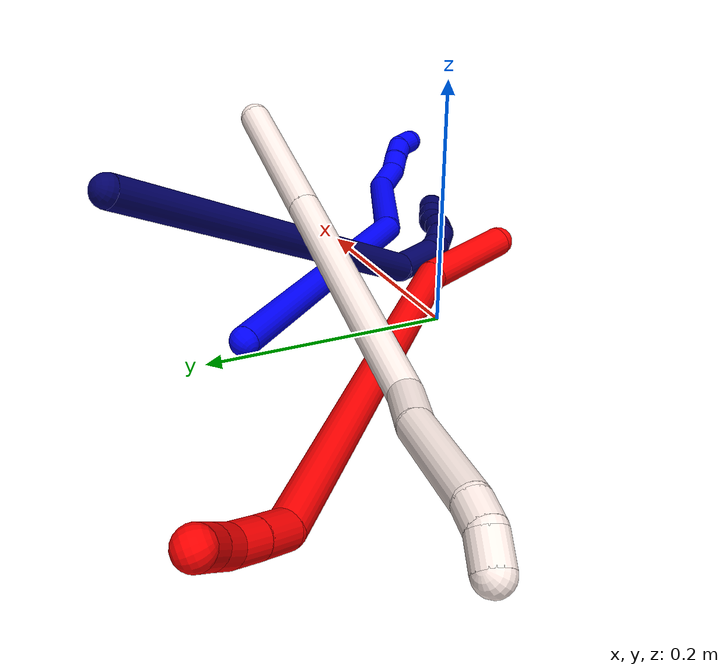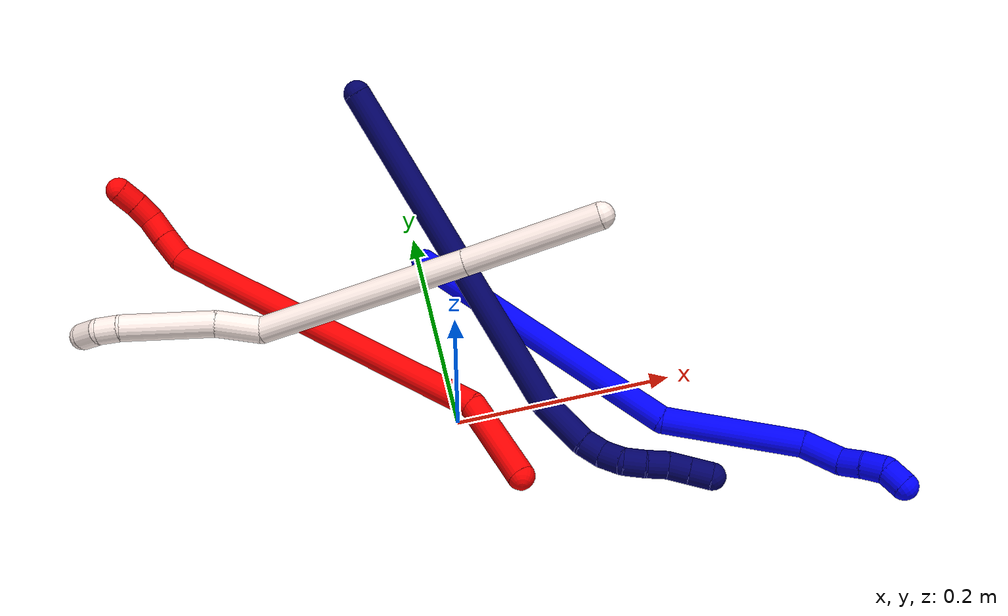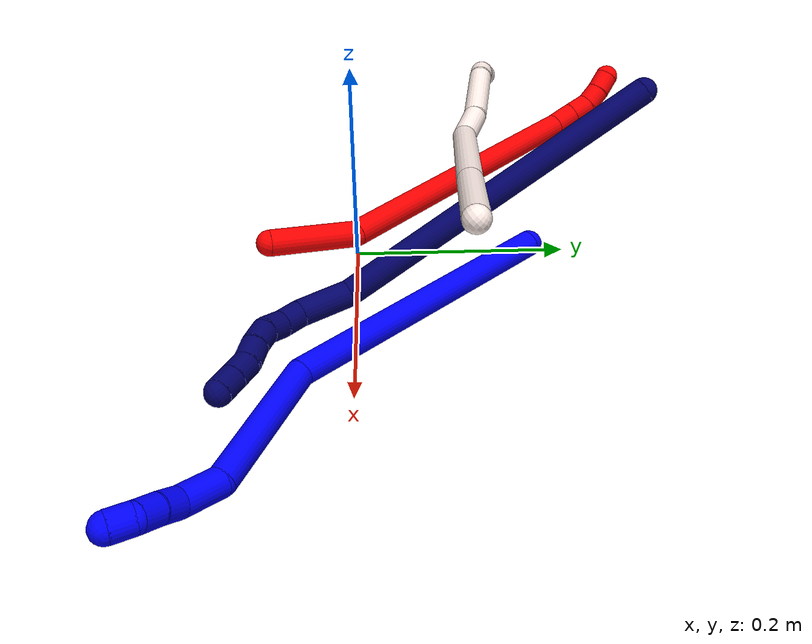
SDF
<sdf version="1.7">
 <world name="default">
  <model name="photoneo_s_sensor">
   <static>1</static>
   <pose>0 0 2 1.57079 1.57079 3.14159</pose>
   <link name="link">
    <inertial><mass>0.1</mass></inertial>
    <sensor name="sensor" type="depth">
     <update_rate>30</update_rate>
     <camera>
      <horizontal_fov>1.22</horizontal_fov>
      <image><width>1920</width><height>1200</height><format>B8G8R8</format></image>
      <clip><near>0.1</near><far>4</far></clip>
      <depth_camera><output>points</output></depth_camera>
     </camera>
     <plugin name="camera_plugin" filename="libgazebo_ros_depth_camera.so">
      <baseline>0.2</baseline>
      <alwaysOn>1</alwaysOn>
      <updateRate>0.0</updateRate>
      <cameraName>camera_ir</cameraName>
      <imageTopicName>/camera/color/image_raw</imageTopicName>
      <cameraInfoTopicName>/camera/color/camera_info</cameraInfoTopicName>
      <depthImageTopicName>/camera/depth/image_raw</depthImageTopicName>
      <depthImageCameraInfoTopicName>/camera/depth/camera_info</depthImageCameraInfoTopicName>
      <pointCloudTopicName>/camera/depth/points</pointCloudTopicName>
      <frameName>fr_optical</frameName>
      <pointCloudCutoff>0.1</pointCloudCutoff>
      <pointCloudCutoffMax>2.0</pointCloudCutoffMax>
      <distortionK1>0</distortionK1>
      <distortionK2>0</distortionK2>
      <distortionK3>0</distortionK3>
      <distortionT1>0</distortionT1>
      <distortionT2>0</distortionT2>
      <CxPrime>0</CxPrime>
      <Cx>0</Cx>
      <Cy>0</Cy>
      <focalLength>0</focalLength>
      <hackBaseline>0</hackBaseline>
     </plugin>
    </sensor>
   </link>
  </model>
  <model name="bin">
   <static>1</static>
   <link name="bottom">
    <collision name="collision-bottom">
     <pose>0 0 -0.01 0 -0 0</pose>
     <geometry><box><size>0.8 0.6 0.02</size></box></geometry>
     <surface>
      <friction><ode><mu>100</mu><mu2>100</mu2></ode></friction>
      <contact><collide_bitmask>65535</collide_bitmask></contact>
     </surface>
    </collision>
   </link>
   <link name="west_wall">
    <collision name="collision-west_wall">
     <pose>-0.41 0 0.1 0 -0 0</pose>
     <geometry><box><size>0.02 0.6 0.2</size></box></geometry>
     <surface>
      <friction><ode><mu>100</mu><mu2>100</mu2></ode></friction>
      <contact><collide_bitmask>65535</collide_bitmask></contact>
     </surface>
    </collision>
   </link>
   <link name="east_wall">
    <collision name="collision-east_wall">
     <pose>0.41 0 0.1 0 -0 0</pose>
     <geometry><box><size>0.02 0.6 0.2</size></box></geometry>
     <surface>
      <friction><ode><mu>100</mu><mu2>100</mu2></ode></friction>
      <contact><collide_bitmask>65535</collide_bitmask></contact>
     </surface>
    </collision>
   </link>
   <link name="south_wall">
    <collision name="collision-south_wall">
     <pose>0 -0.31 0.1 0 -0 0</pose>
     <geometry><box><size>0.8 0.02 0.2</size></box></geometry>
     <surface>
      <friction><ode><mu>100</mu><mu2>100</mu2></ode></friction>
      <contact><collide_bitmask>65535</collide_bitmask></contact>
     </surface>
    </collision>
   </link>
   <link name="north_wall">
    <collision name="collision-north_wall">
     <pose>0 0.31 0.1 0 -0 0</pose>
     <geometry><box><size>0.8 0.02 0.2</size></box></geometry>
     <surface>
      <friction><ode><mu>100</mu><mu2>100</mu2></ode></friction>
      <contact><collide_bitmask>65535</collide_bitmask></contact>
     </surface>
    </collision>
   </link>
  </model>
  <model name="1">
   <static>0</static>
   <link name="1">
    <collision name="collision-cylinder-e_1_1_4">
     <pose>0.085048 -0.096403 0.048234 1.10688 0.667979 0.422379</pose>
     <geometry><cylinder><radius>0.0125</radius><length>0.274613</length></cylinder></geometry>
     <surface>
      <friction><ode><mu>1.16</mu><mu2>1.16</mu2><slip1>0</slip1><slip2>0</slip2></ode></friction>
      <contact><ode><kp>1e+06</kp><kd>1</kd><max_vel>0</max_vel><min_depth>0.001</min_depth></ode></contact>
     </surface>
    </collision>
    <visual name="visual-cylinder-e_1_1_4">
     <pose>0.085048 -0.096403 0.048234 1.10688 0.667979 0.422379</pose>
     <geometry><cylinder><radius>0.0125</radius><length>0.274613</length></cylinder></geometry>
     <material><ambient>0 0 1 1</ambient></material>
    </visual>
    <collision name="collision-cylinder-e_2_4_5">
     <pose>0.206422 -0.219303 0.141283 0.53396 0.609203 0.171553</pose>
     <geometry><cylinder><radius>0.0125</radius><length>0.126967</length></cylinder></geometry>
     <surface>
      <friction><ode><mu>1.16</mu><mu2>1.16</mu2><slip1>0</slip1><slip2>0</slip2></ode></friction>
      <contact><ode><kp>1e+06</kp><kd>1</kd><max_vel>0</max_vel><min_depth>0.001</min_depth></ode></contact>
     </surface>
    </collision>
    <visual name="visual-cylinder-e_2_4_5">
     <pose>0.206422 -0.219303 0.141283 0.53396 0.609203 0.171553</pose>
     <geometry><cylinder><radius>0.0125</radius><length>0.126967</length></cylinder></geometry>
     <material><ambient>0 0 1 1</ambient></material>
    </visual>
    <collision name="collision-cylinder-e_3_5_6">
     <pose>0.251168 -0.260053 0.194816 1.02189 0.466813 0.264994</pose>
     <geometry><cylinder><radius>0.0125</radius><length>0.037418</length></cylinder></geometry>
     <surface>
      <friction><ode><mu>1.16</mu><mu2>1.16</mu2><slip1>0</slip1><slip2>0</slip2></ode></friction>
      <contact><ode><kp>1e+06</kp><kd>1</kd><max_vel>0</max_vel><min_depth>0.001</min_depth></ode></contact>
     </surface>
    </collision>
    <visual name="visual-cylinder-e_3_5_6">
     <pose>0.251168 -0.260053 0.194816 1.02189 0.466813 0.264994</pose>
     <geometry><cylinder><radius>0.0125</radius><length>0.037418</length></cylinder></geometry>
     <material><ambient>0 0 1 1</ambient></material>
    </visual>
    <collision name="collision-cylinder-e_4_6_7">
     <pose>0.260927 -0.282239 0.210111 0.878471 0.129265 0.060801</pose>
     <geometry><cylinder><radius>0.0125</radius><length>0.020783</length></cylinder></geometry>
     <surface>
      <friction><ode><mu>1.16</mu><mu2>1.16</mu2><slip1>0</slip1><slip2>0</slip2></ode></friction>
      <contact><ode><kp>1e+06</kp><kd>1</kd><max_vel>0</max_vel><min_depth>0.001</min_depth></ode></contact>
     </surface>
    </collision>
    <visual name="visual-cylinder-e_4_6_7">
     <pose>0.260927 -0.282239 0.210111 0.878471 0.129265 0.060801</pose>
     <geometry><cylinder><radius>0.0125</radius><length>0.020783</length></cylinder></geometry>
     <material><ambient>0 0 1 1</ambient></material>
    </visual>
    <collision name="collision-cylinder-e_5_7_8">
     <pose>0.264656 -0.297902 0.222736 0.907081 0.23877 0.116807</pose>
     <geometry><cylinder><radius>0.0125</radius><length>0.020203</length></cylinder></geometry>
     <surface>
      <friction><ode><mu>1.16</mu><mu2>1.16</mu2><slip1>0</slip1><slip2>0</slip2></ode></friction>
      <contact><ode><kp>1e+06</kp><kd>1</kd><max_vel>0</max_vel><min_depth>0.001</min_depth></ode></contact>
     </surface>
    </collision>
    <visual name="visual-cylinder-e_5_7_8">
     <pose>0.264656 -0.297902 0.222736 0.907081 0.23877 0.116807</pose>
     <geometry><cylinder><radius>0.0125</radius><length>0.020203</length></cylinder></geometry>
     <material><ambient>0 0 1 1</ambient></material>
    </visual>
    <collision name="collision-cylinder-e_6_8_2">
     <pose>0.272279 -0.313984 0.230523 1.36524 0.550362 0.451275</pose>
     <geometry><cylinder><radius>0.0125</radius><length>0.020015</length></cylinder></geometry>
     <surface>
      <friction><ode><mu>1.16</mu><mu2>1.16</mu2><slip1>0</slip1><slip2>0</slip2></ode></friction>
      <contact><ode><kp>1e+06</kp><kd>1</kd><max_vel>0</max_vel><min_depth>0.001</min_depth></ode></contact>
     </surface>
    </collision>
    <visual name="visual-cylinder-e_6_8_2">
     <pose>0.272279 -0.313984 0.230523 1.36524 0.550362 0.451275</pose>
     <geometry><cylinder><radius>0.0125</radius><length>0.020015</length></cylinder></geometry>
     <material><ambient>0 0 1 1</ambient></material>
    </visual>
    <collision name="collision-sphere-2">
     <pose>0.277513 -0.322334 0.232264 0 -0 0</pose>
     <geometry><sphere><radius>0.0125</radius></sphere></geometry>
     <surface>
      <friction><ode><mu>1.16</mu><mu2>1.16</mu2><slip1>0</slip1><slip2>0</slip2></ode></friction>
      <contact><ode><kp>1e+06</kp><kd>1</kd><max_vel>0</max_vel><min_depth>0.001</min_depth></ode></contact>
     </surface>
    </collision>
    <visual name="visual-sphere-2">
     <pose>0.277513 -0.322334 0.232264 0 -0 0</pose>
     <geometry><sphere><radius>0.0125</radius></sphere></geometry>
     <material><ambient>0 0 1 1</ambient></material>
    </visual>
    <collision name="collision-sphere-4">
     <pose>0.170095 -0.192805 0.096467 0 -0 0</pose>
     <geometry><sphere><radius>0.0125</radius></sphere></geometry>
     <surface>
      <friction><ode><mu>1.16</mu><mu2>1.16</mu2><slip1>0</slip1><slip2>0</slip2></ode></friction>
      <contact><ode><kp>1e+06</kp><kd>1</kd><max_vel>0</max_vel><min_depth>0.001</min_depth></ode></contact>
     </surface>
    </collision>
    <visual name="visual-sphere-4">
     <pose>0.170095 -0.192805 0.096467 0 -0 0</pose>
     <geometry><sphere><radius>0.0125</radius></sphere></geometry>
     <material><ambient>0 0 1 1</ambient></material>
    </visual>
    <collision name="collision-sphere-1">
     <geometry><sphere><radius>0.0125</radius></sphere></geometry>
     <surface>
      <friction><ode><mu>1.16</mu><mu2>1.16</mu2><slip1>0</slip1><slip2>0</slip2></ode></friction>
      <contact><ode><kp>1e+06</kp><kd>1</kd><max_vel>0</max_vel><min_depth>0.001</min_depth></ode></contact>
     </surface>
    </collision>
    <visual name="visual-sphere-1">
     <geometry><sphere><radius>0.0125</radius></sphere></geometry>
     <material><ambient>0 0 1 1</ambient></material>
    </visual>
    <collision name="collision-sphere-8">
     <pose>0.267045 -0.305633 0.228782 0 -0 0</pose>
     <geometry><sphere><radius>0.0125</radius></sphere></geometry>
     <surface>
      <friction><ode><mu>1.16</mu><mu2>1.16</mu2><slip1>0</slip1><slip2>0</slip2></ode></friction>
      <contact><ode><kp>1e+06</kp><kd>1</kd><max_vel>0</max_vel><min_depth>0.001</min_depth></ode></contact>
     </surface>
    </collision>
    <visual name="visual-sphere-8">
     <pose>0.267045 -0.305633 0.228782 0 -0 0</pose>
     <geometry><sphere><radius>0.0125</radius></sphere></geometry>
     <material><ambient>0 0 1 1</ambient></material>
    </visual>
    <collision name="collision-sphere-5">
     <pose>0.242748 -0.2458 0.186099 0 -0 0</pose>
     <geometry><sphere><radius>0.0125</radius></sphere></geometry>
     <surface>
      <friction><ode><mu>1.16</mu><mu2>1.16</mu2><slip1>0</slip1><slip2>0</slip2></ode></friction>
      <contact><ode><kp>1e+06</kp><kd>1</kd><max_vel>0</max_vel><min_depth>0.001</min_depth></ode></contact>
     </surface>
    </collision>
    <visual name="visual-sphere-5">
     <pose>0.242748 -0.2458 0.186099 0 -0 0</pose>
     <geometry><sphere><radius>0.0125</radius></sphere></geometry>
     <material><ambient>0 0 1 1</ambient></material>
    </visual>
    <collision name="collision-sphere-6">
     <pose>0.259588 -0.274306 0.203533 0 -0 0</pose>
     <geometry><sphere><radius>0.0125</radius></sphere></geometry>
     <surface>
      <friction><ode><mu>1.16</mu><mu2>1.16</mu2><slip1>0</slip1><slip2>0</slip2></ode></friction>
      <contact><ode><kp>1e+06</kp><kd>1</kd><max_vel>0</max_vel><min_depth>0.001</min_depth></ode></contact>
     </surface>
    </collision>
    <visual name="visual-sphere-6">
     <pose>0.259588 -0.274306 0.203533 0 -0 0</pose>
     <geometry><sphere><radius>0.0125</radius></sphere></geometry>
     <material><ambient>0 0 1 1</ambient></material>
    </visual>
    <collision name="collision-sphere-7">
     <pose>0.262267 -0.290171 0.216689 0 -0 0</pose>
     <geometry><sphere><radius>0.0125</radius></sphere></geometry>
     <surface>
      <friction><ode><mu>1.16</mu><mu2>1.16</mu2><slip1>0</slip1><slip2>0</slip2></ode></friction>
      <contact><ode><kp>1e+06</kp><kd>1</kd><max_vel>0</max_vel><min_depth>0.001</min_depth></ode></contact>
     </surface>
    </collision>
    <visual name="visual-sphere-7">
     <pose>0.262267 -0.290171 0.216689 0 -0 0</pose>
     <geometry><sphere><radius>0.0125</radius></sphere></geometry>
     <material><ambient>0 0 1 1</ambient></material>
    </visual>
    <inertial>
     <pose>0.150364 -0.164434 0.103909 0 -0 0</pose>
     <mass>0.5</mass>
     <inertia>
      <ixx>0.002002</ixx>
      <ixy>0</ixy>
      <ixz>0</ixz>
      <iyy>0.001827</iyy>
      <iyz>0</iyz>
      <izz>0.000139</izz>
     </inertia>
    </inertial>
   </link>
   <pose>0.004342 0.166831 0.01149 -1.00327 0.900172 -0.798296</pose>
  </model>
  <model name="2">
   <static>0</static>
   <link name="2">
    <collision name="collision-cylinder-e_1_1_4">
     <pose>-0.015242 0.012703 0.036487 -0.335036 -0.375768 0.06428</pose>
     <geometry><cylinder><radius>0.0125</radius><length>0.083067</length></cylinder></geometry>
     <surface>
      <friction><ode><mu>1.16</mu><mu2>1.16</mu2><slip1>0</slip1><slip2>0</slip2></ode></friction>
      <contact><ode><kp>1e+06</kp><kd>1</kd><max_vel>0</max_vel><min_depth>0.001</min_depth></ode></contact>
     </surface>
    </collision>
    <visual name="visual-cylinder-e_1_1_4">
     <pose>-0.015242 0.012703 0.036487 -0.335036 -0.375768 0.06428</pose>
     <geometry><cylinder><radius>0.0125</radius><length>0.083067</length></cylinder></geometry>
     <material><ambient>1 0 0 1</ambient></material>
    </visual>
    <collision name="collision-cylinder-e_2_4_5">
     <pose>-0.111614 0.135171 0.163705 -0.880046 -0.51784 0.248121</pose>
     <geometry><cylinder><radius>0.0125</radius><length>0.327793</length></cylinder></geometry>
     <surface>
      <friction><ode><mu>1.16</mu><mu2>1.16</mu2><slip1>0</slip1><slip2>0</slip2></ode></friction>
      <contact><ode><kp>1e+06</kp><kd>1</kd><max_vel>0</max_vel><min_depth>0.001</min_depth></ode></contact>
     </surface>
    </collision>
    <visual name="visual-cylinder-e_2_4_5">
     <pose>-0.111614 0.135171 0.163705 -0.880046 -0.51784 0.248121</pose>
     <geometry><cylinder><radius>0.0125</radius><length>0.327793</length></cylinder></geometry>
     <material><ambient>1 0 0 1</ambient></material>
    </visual>
    <collision name="collision-cylinder-e_3_5_6">
     <pose>-0.202595 0.248078 0.262413 -0.375416 -0.854585 0.172552</pose>
     <geometry><cylinder><radius>0.0125</radius><length>0.02612</length></cylinder></geometry>
     <surface>
      <friction><ode><mu>1.16</mu><mu2>1.16</mu2><slip1>0</slip1><slip2>0</slip2></ode></friction>
      <contact><ode><kp>1e+06</kp><kd>1</kd><max_vel>0</max_vel><min_depth>0.001</min_depth></ode></contact>
     </surface>
    </collision>
    <visual name="visual-cylinder-e_3_5_6">
     <pose>-0.202595 0.248078 0.262413 -0.375416 -0.854585 0.172552</pose>
     <geometry><cylinder><radius>0.0125</radius><length>0.02612</length></cylinder></geometry>
     <material><ambient>1 0 0 1</ambient></material>
    </visual>
    <collision name="collision-cylinder-e_4_6_7">
     <pose>-0.220658 0.253515 0.277298 -0.320579 -0.845598 0.145232</pose>
     <geometry><cylinder><radius>0.0125</radius><length>0.021947</length></cylinder></geometry>
     <surface>
      <friction><ode><mu>1.16</mu><mu2>1.16</mu2><slip1>0</slip1><slip2>0</slip2></ode></friction>
      <contact><ode><kp>1e+06</kp><kd>1</kd><max_vel>0</max_vel><min_depth>0.001</min_depth></ode></contact>
     </surface>
    </collision>
    <visual name="visual-cylinder-e_4_6_7">
     <pose>-0.220658 0.253515 0.277298 -0.320579 -0.845598 0.145232</pose>
     <geometry><cylinder><radius>0.0125</radius><length>0.021947</length></cylinder></geometry>
     <material><ambient>1 0 0 1</ambient></material>
    </visual>
    <collision name="collision-cylinder-e_5_7_8">
     <pose>-0.238219 0.25802 0.287671 -0.567887 -1.1565 0.376429</pose>
     <geometry><cylinder><radius>0.0125</radius><length>0.020424</length></cylinder></geometry>
     <surface>
      <friction><ode><mu>1.16</mu><mu2>1.16</mu2><slip1>0</slip1><slip2>0</slip2></ode></friction>
      <contact><ode><kp>1e+06</kp><kd>1</kd><max_vel>0</max_vel><min_depth>0.001</min_depth></ode></contact>
     </surface>
    </collision>
    <visual name="visual-cylinder-e_5_7_8">
     <pose>-0.238219 0.25802 0.287671 -0.567887 -1.1565 0.376429</pose>
     <geometry><cylinder><radius>0.0125</radius><length>0.020424</length></cylinder></geometry>
     <material><ambient>1 0 0 1</ambient></material>
    </visual>
    <collision name="collision-cylinder-e_6_8_2">
     <pose>-0.257225 0.263085 0.293412 -0.897648 -1.20949 0.642631</pose>
     <geometry><cylinder><radius>0.0125</radius><length>0.020648</length></cylinder></geometry>
     <surface>
      <friction><ode><mu>1.16</mu><mu2>1.16</mu2><slip1>0</slip1><slip2>0</slip2></ode></friction>
      <contact><ode><kp>1e+06</kp><kd>1</kd><max_vel>0</max_vel><min_depth>0.001</min_depth></ode></contact>
     </surface>
    </collision>
    <visual name="visual-cylinder-e_6_8_2">
     <pose>-0.257225 0.263085 0.293412 -0.897648 -1.20949 0.642631</pose>
     <geometry><cylinder><radius>0.0125</radius><length>0.020648</length></cylinder></geometry>
     <material><ambient>1 0 0 1</ambient></material>
    </visual>
    <collision name="collision-sphere-2">
     <pose>-0.266882 0.265938 0.295687 0 -0 0</pose>
     <geometry><sphere><radius>0.0125</radius></sphere></geometry>
     <surface>
      <friction><ode><mu>1.16</mu><mu2>1.16</mu2><slip1>0</slip1><slip2>0</slip2></ode></friction>
      <contact><ode><kp>1e+06</kp><kd>1</kd><max_vel>0</max_vel><min_depth>0.001</min_depth></ode></contact>
     </surface>
    </collision>
    <visual name="visual-sphere-2">
     <pose>-0.266882 0.265938 0.295687 0 -0 0</pose>
     <geometry><sphere><radius>0.0125</radius></sphere></geometry>
     <material><ambient>1 0 0 1</ambient></material>
    </visual>
    <collision name="collision-sphere-4">
     <pose>-0.030484 0.025407 0.072975 0 -0 0</pose>
     <geometry><sphere><radius>0.0125</radius></sphere></geometry>
     <surface>
      <friction><ode><mu>1.16</mu><mu2>1.16</mu2><slip1>0</slip1><slip2>0</slip2></ode></friction>
      <contact><ode><kp>1e+06</kp><kd>1</kd><max_vel>0</max_vel><min_depth>0.001</min_depth></ode></contact>
     </surface>
    </collision>
    <visual name="visual-sphere-4">
     <pose>-0.030484 0.025407 0.072975 0 -0 0</pose>
     <geometry><sphere><radius>0.0125</radius></sphere></geometry>
     <material><ambient>1 0 0 1</ambient></material>
    </visual>
    <collision name="collision-sphere-1">
     <geometry><sphere><radius>0.0125</radius></sphere></geometry>
     <surface>
      <friction><ode><mu>1.16</mu><mu2>1.16</mu2><slip1>0</slip1><slip2>0</slip2></ode></friction>
      <contact><ode><kp>1e+06</kp><kd>1</kd><max_vel>0</max_vel><min_depth>0.001</min_depth></ode></contact>
     </surface>
    </collision>
    <visual name="visual-sphere-1">
     <geometry><sphere><radius>0.0125</radius></sphere></geometry>
     <material><ambient>1 0 0 1</ambient></material>
    </visual>
    <collision name="collision-sphere-8">
     <pose>-0.247567 0.260231 0.291137 0 -0 0</pose>
     <geometry><sphere><radius>0.0125</radius></sphere></geometry>
     <surface>
      <friction><ode><mu>1.16</mu><mu2>1.16</mu2><slip1>0</slip1><slip2>0</slip2></ode></friction>
      <contact><ode><kp>1e+06</kp><kd>1</kd><max_vel>0</max_vel><min_depth>0.001</min_depth></ode></contact>
     </surface>
    </collision>
    <visual name="visual-sphere-8">
     <pose>-0.247567 0.260231 0.291137 0 -0 0</pose>
     <geometry><sphere><radius>0.0125</radius></sphere></geometry>
     <material><ambient>1 0 0 1</ambient></material>
    </visual>
    <collision name="collision-sphere-5">
     <pose>-0.192743 0.244934 0.254436 0 -0 0</pose>
     <geometry><sphere><radius>0.0125</radius></sphere></geometry>
     <surface>
      <friction><ode><mu>1.16</mu><mu2>1.16</mu2><slip1>0</slip1><slip2>0</slip2></ode></friction>
      <contact><ode><kp>1e+06</kp><kd>1</kd><max_vel>0</max_vel><min_depth>0.001</min_depth></ode></contact>
     </surface>
    </collision>
    <visual name="visual-sphere-5">
     <pose>-0.192743 0.244934 0.254436 0 -0 0</pose>
     <geometry><sphere><radius>0.0125</radius></sphere></geometry>
     <material><ambient>1 0 0 1</ambient></material>
    </visual>
    <collision name="collision-sphere-6">
     <pose>-0.212446 0.251222 0.27039 0 -0 0</pose>
     <geometry><sphere><radius>0.0125</radius></sphere></geometry>
     <surface>
      <friction><ode><mu>1.16</mu><mu2>1.16</mu2><slip1>0</slip1><slip2>0</slip2></ode></friction>
      <contact><ode><kp>1e+06</kp><kd>1</kd><max_vel>0</max_vel><min_depth>0.001</min_depth></ode></contact>
     </surface>
    </collision>
    <visual name="visual-sphere-6">
     <pose>-0.212446 0.251222 0.27039 0 -0 0</pose>
     <geometry><sphere><radius>0.0125</radius></sphere></geometry>
     <material><ambient>1 0 0 1</ambient></material>
    </visual>
    <collision name="collision-sphere-7">
     <pose>-0.22887 0.255809 0.284206 0 -0 0</pose>
     <geometry><sphere><radius>0.0125</radius></sphere></geometry>
     <surface>
      <friction><ode><mu>1.16</mu><mu2>1.16</mu2><slip1>0</slip1><slip2>0</slip2></ode></friction>
      <contact><ode><kp>1e+06</kp><kd>1</kd><max_vel>0</max_vel><min_depth>0.001</min_depth></ode></contact>
     </surface>
    </collision>
    <visual name="visual-sphere-7">
     <pose>-0.22887 0.255809 0.284206 0 -0 0</pose>
     <geometry><sphere><radius>0.0125</radius></sphere></geometry>
     <material><ambient>1 0 0 1</ambient></material>
    </visual>
    <inertial>
     <pose>-0.116328 0.136218 0.163133 0 -0 0</pose>
     <mass>0.5</mass>
     <inertia>
      <ixx>0.003146</ixx>
      <ixy>0</ixy>
      <ixz>0</ixz>
      <iyy>0.002806</iyy>
      <iyz>0</iyz>
      <izz>-0.000485</izz>
     </inertia>
    </inertial>
   </link>
   <pose>0.038005 -0.079601 0.042766 -2.17823 0.986344 -0.685444</pose>
  </model>
  <model name="7">
   <static>0</static>
   <link name="7">
    <collision name="collision-cylinder-e_1_1_4">
     <pose>0.001944 -0.010853 -0.164368 3.07566 0.011802 0.354116</pose>
     <geometry><cylinder><radius>0.0125</radius><length>0.329475</length></cylinder></geometry>
     <surface>
      <friction><ode><mu>1.16</mu><mu2>1.16</mu2><slip1>0</slip1><slip2>0</slip2></ode></friction>
      <contact><ode><kp>1e+06</kp><kd>1</kd><max_vel>0</max_vel><min_depth>0.001</min_depth></ode></contact>
     </surface>
    </collision>
    <visual name="visual-cylinder-e_1_1_4">
     <pose>0.001944 -0.010853 -0.164368 3.07566 0.011802 0.354116</pose>
     <geometry><cylinder><radius>0.0125</radius><length>0.329475</length></cylinder></geometry>
     <material><ambient>0.003922 0 0.403922 1</ambient></material>
    </visual>
    <collision name="collision-cylinder-e_2_4_5">
     <pose>0.006925 -0.033228 -0.350771 2.65982 0.121536 0.485578</pose>
     <geometry><cylinder><radius>0.0125</radius><length>0.050099</length></cylinder></geometry>
     <surface>
      <friction><ode><mu>1.16</mu><mu2>1.16</mu2><slip1>0</slip1><slip2>0</slip2></ode></friction>
      <contact><ode><kp>1e+06</kp><kd>1</kd><max_vel>0</max_vel><min_depth>0.001</min_depth></ode></contact>
     </surface>
    </collision>
    <visual name="visual-cylinder-e_2_4_5">
     <pose>0.006925 -0.033228 -0.350771 2.65982 0.121536 0.485578</pose>
     <geometry><cylinder><radius>0.0125</radius><length>0.050099</length></cylinder></geometry>
     <material><ambient>0.003922 0 0.403922 1</ambient></material>
    </visual>
    <collision name="collision-cylinder-e_3_5_6">
     <pose>0.01341 -0.04954 -0.381036 2.61442 0.347354 1.15292</pose>
     <geometry><cylinder><radius>0.0125</radius><length>0.020257</length></cylinder></geometry>
     <surface>
      <friction><ode><mu>1.16</mu><mu2>1.16</mu2><slip1>0</slip1><slip2>0</slip2></ode></friction>
      <contact><ode><kp>1e+06</kp><kd>1</kd><max_vel>0</max_vel><min_depth>0.001</min_depth></ode></contact>
     </surface>
    </collision>
    <visual name="visual-cylinder-e_3_5_6">
     <pose>0.01341 -0.04954 -0.381036 2.61442 0.347354 1.15292</pose>
     <geometry><cylinder><radius>0.0125</radius><length>0.020257</length></cylinder></geometry>
     <material><ambient>0.003922 0 0.403922 1</ambient></material>
    </visual>
    <collision name="collision-cylinder-e_4_6_7">
     <pose>0.020978 -0.061173 -0.395401 2.3017 0.421506 0.893607</pose>
     <geometry><cylinder><radius>0.0125</radius><length>0.020142</length></cylinder></geometry>
     <surface>
      <friction><ode><mu>1.16</mu><mu2>1.16</mu2><slip1>0</slip1><slip2>0</slip2></ode></friction>
      <contact><ode><kp>1e+06</kp><kd>1</kd><max_vel>0</max_vel><min_depth>0.001</min_depth></ode></contact>
     </surface>
    </collision>
    <visual name="visual-cylinder-e_4_6_7">
     <pose>0.020978 -0.061173 -0.395401 2.3017 0.421506 0.893607</pose>
     <geometry><cylinder><radius>0.0125</radius><length>0.020142</length></cylinder></geometry>
     <material><ambient>0.003922 0 0.403922 1</ambient></material>
    </visual>
    <collision name="collision-cylinder-e_5_7_8">
     <pose>0.032366 -0.071848 -0.407246 2.55048 0.812927 1.91029</pose>
     <geometry><cylinder><radius>0.0125</radius><length>0.02001</length></cylinder></geometry>
     <surface>
      <friction><ode><mu>1.16</mu><mu2>1.16</mu2><slip1>0</slip1><slip2>0</slip2></ode></friction>
      <contact><ode><kp>1e+06</kp><kd>1</kd><max_vel>0</max_vel><min_depth>0.001</min_depth></ode></contact>
     </surface>
    </collision>
    <visual name="visual-cylinder-e_5_7_8">
     <pose>0.032366 -0.071848 -0.407246 2.55048 0.812927 1.91029</pose>
     <geometry><cylinder><radius>0.0125</radius><length>0.02001</length></cylinder></geometry>
     <material><ambient>0.003922 0 0.403922 1</ambient></material>
    </visual>
    <collision name="collision-cylinder-e_6_8_9">
     <pose>0.047681 -0.078068 -0.418396 2.72806 0.934914 2.35389</pose>
     <geometry><cylinder><radius>0.0125</radius><length>0.020007</length></cylinder></geometry>
     <surface>
      <friction><ode><mu>1.16</mu><mu2>1.16</mu2><slip1>0</slip1><slip2>0</slip2></ode></friction>
      <contact><ode><kp>1e+06</kp><kd>1</kd><max_vel>0</max_vel><min_depth>0.001</min_depth></ode></contact>
     </surface>
    </collision>
    <visual name="visual-cylinder-e_6_8_9">
     <pose>0.047681 -0.078068 -0.418396 2.72806 0.934914 2.35389</pose>
     <geometry><cylinder><radius>0.0125</radius><length>0.020007</length></cylinder></geometry>
     <material><ambient>0.003922 0 0.403922 1</ambient></material>
    </visual>
    <collision name="collision-cylinder-e_7_9_10">
     <pose>0.061894 -0.084822 -0.430393 2.55416 0.664047 1.70139</pose>
     <geometry><cylinder><radius>0.0125</radius><length>0.020006</length></cylinder></geometry>
     <surface>
      <friction><ode><mu>1.16</mu><mu2>1.16</mu2><slip1>0</slip1><slip2>0</slip2></ode></friction>
      <contact><ode><kp>1e+06</kp><kd>1</kd><max_vel>0</max_vel><min_depth>0.001</min_depth></ode></contact>
     </surface>
    </collision>
    <visual name="visual-cylinder-e_7_9_10">
     <pose>0.061894 -0.084822 -0.430393 2.55416 0.664047 1.70139</pose>
     <geometry><cylinder><radius>0.0125</radius><length>0.020006</length></cylinder></geometry>
     <material><ambient>0.003922 0 0.403922 1</ambient></material>
    </visual>
    <collision name="collision-cylinder-e_8_10_2">
     <pose>0.074234 -0.093589 -0.443472 2.5479 0.665379 1.69237</pose>
     <geometry><cylinder><radius>0.0125</radius><length>0.020003</length></cylinder></geometry>
     <surface>
      <friction><ode><mu>1.16</mu><mu2>1.16</mu2><slip1>0</slip1><slip2>0</slip2></ode></friction>
      <contact><ode><kp>1e+06</kp><kd>1</kd><max_vel>0</max_vel><min_depth>0.001</min_depth></ode></contact>
     </surface>
    </collision>
    <visual name="visual-cylinder-e_8_10_2">
     <pose>0.074234 -0.093589 -0.443472 2.5479 0.665379 1.69237</pose>
     <geometry><cylinder><radius>0.0125</radius><length>0.020003</length></cylinder></geometry>
     <material><ambient>0.003922 0 0.403922 1</ambient></material>
    </visual>
    <collision name="collision-sphere-2">
     <pose>0.080408 -0.097991 -0.449994 0 -0 0</pose>
     <geometry><sphere><radius>0.0125</radius></sphere></geometry>
     <surface>
      <friction><ode><mu>1.16</mu><mu2>1.16</mu2><slip1>0</slip1><slip2>0</slip2></ode></friction>
      <contact><ode><kp>1e+06</kp><kd>1</kd><max_vel>0</max_vel><min_depth>0.001</min_depth></ode></contact>
     </surface>
    </collision>
    <visual name="visual-sphere-2">
     <pose>0.080408 -0.097991 -0.449994 0 -0 0</pose>
     <geometry><sphere><radius>0.0125</radius></sphere></geometry>
     <material><ambient>0.003922 0 0.403922 1</ambient></material>
    </visual>
    <collision name="collision-sphere-10">
     <pose>0.068059 -0.089187 -0.43695 0 -0 0</pose>
     <geometry><sphere><radius>0.0125</radius></sphere></geometry>
     <surface>
      <friction><ode><mu>1.16</mu><mu2>1.16</mu2><slip1>0</slip1><slip2>0</slip2></ode></friction>
      <contact><ode><kp>1e+06</kp><kd>1</kd><max_vel>0</max_vel><min_depth>0.001</min_depth></ode></contact>
     </surface>
    </collision>
    <visual name="visual-sphere-10">
     <pose>0.068059 -0.089187 -0.43695 0 -0 0</pose>
     <geometry><sphere><radius>0.0125</radius></sphere></geometry>
     <material><ambient>0.003922 0 0.403922 1</ambient></material>
    </visual>
    <collision name="collision-sphere-9">
     <pose>0.055729 -0.080456 -0.423836 0 -0 0</pose>
     <geometry><sphere><radius>0.0125</radius></sphere></geometry>
     <surface>
      <friction><ode><mu>1.16</mu><mu2>1.16</mu2><slip1>0</slip1><slip2>0</slip2></ode></friction>
      <contact><ode><kp>1e+06</kp><kd>1</kd><max_vel>0</max_vel><min_depth>0.001</min_depth></ode></contact>
     </surface>
    </collision>
    <visual name="visual-sphere-9">
     <pose>0.055729 -0.080456 -0.423836 0 -0 0</pose>
     <geometry><sphere><radius>0.0125</radius></sphere></geometry>
     <material><ambient>0.003922 0 0.403922 1</ambient></material>
    </visual>
    <collision name="collision-sphere-4">
     <pose>0.003888 -0.021707 -0.328737 0 -0 0</pose>
     <geometry><sphere><radius>0.0125</radius></sphere></geometry>
     <surface>
      <friction><ode><mu>1.16</mu><mu2>1.16</mu2><slip1>0</slip1><slip2>0</slip2></ode></friction>
      <contact><ode><kp>1e+06</kp><kd>1</kd><max_vel>0</max_vel><min_depth>0.001</min_depth></ode></contact>
     </surface>
    </collision>
    <visual name="visual-sphere-4">
     <pose>0.003888 -0.021707 -0.328737 0 -0 0</pose>
     <geometry><sphere><radius>0.0125</radius></sphere></geometry>
     <material><ambient>0.003922 0 0.403922 1</ambient></material>
    </visual>
    <collision name="collision-sphere-1">
     <geometry><sphere><radius>0.0125</radius></sphere></geometry>
     <surface>
      <friction><ode><mu>1.16</mu><mu2>1.16</mu2><slip1>0</slip1><slip2>0</slip2></ode></friction>
      <contact><ode><kp>1e+06</kp><kd>1</kd><max_vel>0</max_vel><min_depth>0.001</min_depth></ode></contact>
     </surface>
    </collision>
    <visual name="visual-sphere-1">
     <geometry><sphere><radius>0.0125</radius></sphere></geometry>
     <material><ambient>0.003922 0 0.403922 1</ambient></material>
    </visual>
    <collision name="collision-sphere-8">
     <pose>0.039632 -0.075681 -0.412956 0 -0 0</pose>
     <geometry><sphere><radius>0.0125</radius></sphere></geometry>
     <surface>
      <friction><ode><mu>1.16</mu><mu2>1.16</mu2><slip1>0</slip1><slip2>0</slip2></ode></friction>
      <contact><ode><kp>1e+06</kp><kd>1</kd><max_vel>0</max_vel><min_depth>0.001</min_depth></ode></contact>
     </surface>
    </collision>
    <visual name="visual-sphere-8">
     <pose>0.039632 -0.075681 -0.412956 0 -0 0</pose>
     <geometry><sphere><radius>0.0125</radius></sphere></geometry>
     <material><ambient>0.003922 0 0.403922 1</ambient></material>
    </visual>
    <collision name="collision-sphere-5">
     <pose>0.009962 -0.044749 -0.372805 0 -0 0</pose>
     <geometry><sphere><radius>0.0125</radius></sphere></geometry>
     <surface>
      <friction><ode><mu>1.16</mu><mu2>1.16</mu2><slip1>0</slip1><slip2>0</slip2></ode></friction>
      <contact><ode><kp>1e+06</kp><kd>1</kd><max_vel>0</max_vel><min_depth>0.001</min_depth></ode></contact>
     </surface>
    </collision>
    <visual name="visual-sphere-5">
     <pose>0.009962 -0.044749 -0.372805 0 -0 0</pose>
     <geometry><sphere><radius>0.0125</radius></sphere></geometry>
     <material><ambient>0.003922 0 0.403922 1</ambient></material>
    </visual>
    <collision name="collision-sphere-6">
     <pose>0.016858 -0.054331 -0.389266 0 -0 0</pose>
     <geometry><sphere><radius>0.0125</radius></sphere></geometry>
     <surface>
      <friction><ode><mu>1.16</mu><mu2>1.16</mu2><slip1>0</slip1><slip2>0</slip2></ode></friction>
      <contact><ode><kp>1e+06</kp><kd>1</kd><max_vel>0</max_vel><min_depth>0.001</min_depth></ode></contact>
     </surface>
    </collision>
    <visual name="visual-sphere-6">
     <pose>0.016858 -0.054331 -0.389266 0 -0 0</pose>
     <geometry><sphere><radius>0.0125</radius></sphere></geometry>
     <material><ambient>0.003922 0 0.403922 1</ambient></material>
    </visual>
    <collision name="collision-sphere-7">
     <pose>0.025099 -0.068016 -0.401535 0 -0 0</pose>
     <geometry><sphere><radius>0.0125</radius></sphere></geometry>
     <surface>
      <friction><ode><mu>1.16</mu><mu2>1.16</mu2><slip1>0</slip1><slip2>0</slip2></ode></friction>
      <contact><ode><kp>1e+06</kp><kd>1</kd><max_vel>0</max_vel><min_depth>0.001</min_depth></ode></contact>
     </surface>
    </collision>
    <visual name="visual-sphere-7">
     <pose>0.025099 -0.068016 -0.401535 0 -0 0</pose>
     <geometry><sphere><radius>0.0125</radius></sphere></geometry>
     <material><ambient>0.003922 0 0.403922 1</ambient></material>
    </visual>
    <inertial>
     <pose>0.012013 -0.02809 -0.242825 0 -0 0</pose>
     <mass>0.5</mass>
     <inertia>
      <ixx>0.003875</ixx>
      <ixy>0</ixy>
      <ixz>0</ixz>
      <iyy>-0.001765</iyy>
      <iyz>0</iyz>
      <izz>0.00013</izz>
     </inertia>
    </inertial>
   </link>
   <pose>-0.03094 0.269193 0.157404 -1.05615 0.059045 0.396288</pose>
  </model>
  <model name="11">
   <static>0</static>
   <link name="11">
    <collision name="collision-cylinder-e_1_1_4">
     <pose>-0.037129 0.052017 -0.003192 -1.63209 -0.619036 0.65552</pose>
     <geometry><cylinder><radius>0.0125</radius><length>0.127977</length></cylinder></geometry>
     <surface>
      <friction><ode><mu>1.16</mu><mu2>1.16</mu2><slip1>0</slip1><slip2>0</slip2></ode></friction>
      <contact><ode><kp>1e+06</kp><kd>1</kd><max_vel>0</max_vel><min_depth>0.001</min_depth></ode></contact>
     </surface>
    </collision>
    <visual name="visual-cylinder-e_1_1_4">
     <pose>-0.037129 0.052017 -0.003192 -1.63209 -0.619036 0.65552</pose>
     <geometry><cylinder><radius>0.0125</radius><length>0.127977</length></cylinder></geometry>
     <material><ambient>1 0.933333 0.909804 1</ambient></material>
    </visual>
    <collision name="collision-cylinder-e_2_4_5">
     <pose>-0.132412 0.185603 -0.010354 -1.61942 -0.618791 0.647568</pose>
     <geometry><cylinder><radius>0.0125</radius><length>0.20051</length></cylinder></geometry>
     <surface>
      <friction><ode><mu>1.16</mu><mu2>1.16</mu2><slip1>0</slip1><slip2>0</slip2></ode></friction>
      <contact><ode><kp>1e+06</kp><kd>1</kd><max_vel>0</max_vel><min_depth>0.001</min_depth></ode></contact>
     </surface>
    </collision>
    <visual name="visual-cylinder-e_2_4_5">
     <pose>-0.132412 0.185603 -0.010354 -1.61942 -0.618791 0.647568</pose>
     <geometry><cylinder><radius>0.0125</radius><length>0.20051</length></cylinder></geometry>
     <material><ambient>1 0.933333 0.909804 1</ambient></material>
    </visual>
    <collision name="collision-cylinder-e_3_5_6">
     <pose>-0.20273 0.282106 -0.00504 -1.01464 -0.605233 0.343652</pose>
     <geometry><cylinder><radius>0.0125</radius><length>0.042765</length></cylinder></geometry>
     <surface>
      <friction><ode><mu>1.16</mu><mu2>1.16</mu2><slip1>0</slip1><slip2>0</slip2></ode></friction>
      <contact><ode><kp>1e+06</kp><kd>1</kd><max_vel>0</max_vel><min_depth>0.001</min_depth></ode></contact>
     </surface>
    </collision>
    <visual name="visual-cylinder-e_3_5_6">
     <pose>-0.20273 0.282106 -0.00504 -1.01464 -0.605233 0.343652</pose>
     <geometry><cylinder><radius>0.0125</radius><length>0.042765</length></cylinder></geometry>
     <material><ambient>1 0.933333 0.909804 1</ambient></material>
    </visual>
    <collision name="collision-cylinder-e_4_6_7">
     <pose>-0.245156 0.324987 0.017029 -1.14173 -0.777654 0.514528</pose>
     <geometry><cylinder><radius>0.0125</radius><length>0.08626</length></cylinder></geometry>
     <surface>
      <friction><ode><mu>1.16</mu><mu2>1.16</mu2><slip1>0</slip1><slip2>0</slip2></ode></friction>
      <contact><ode><kp>1e+06</kp><kd>1</kd><max_vel>0</max_vel><min_depth>0.001</min_depth></ode></contact>
     </surface>
    </collision>
    <visual name="visual-cylinder-e_4_6_7">
     <pose>-0.245156 0.324987 0.017029 -1.14173 -0.777654 0.514528</pose>
     <geometry><cylinder><radius>0.0125</radius><length>0.08626</length></cylinder></geometry>
     <material><ambient>1 0.933333 0.909804 1</ambient></material>
    </visual>
    <collision name="collision-cylinder-e_5_7_8">
     <pose>-0.28145 0.36108 0.031208 -1.40137 -0.630637 0.53699</pose>
     <geometry><cylinder><radius>0.0125</radius><length>0.020464</length></cylinder></geometry>
     <surface>
      <friction><ode><mu>1.16</mu><mu2>1.16</mu2><slip1>0</slip1><slip2>0</slip2></ode></friction>
      <contact><ode><kp>1e+06</kp><kd>1</kd><max_vel>0</max_vel><min_depth>0.001</min_depth></ode></contact>
     </surface>
    </collision>
    <visual name="visual-cylinder-e_5_7_8">
     <pose>-0.28145 0.36108 0.031208 -1.40137 -0.630637 0.53699</pose>
     <geometry><cylinder><radius>0.0125</radius><length>0.020464</length></cylinder></geometry>
     <material><ambient>1 0.933333 0.909804 1</ambient></material>
    </visual>
    <collision name="collision-cylinder-e_6_8_2">
     <pose>-0.290183 0.379847 0.031524 -1.67195 -0.247621 0.273715</pose>
     <geometry><cylinder><radius>0.0125</radius><length>0.022024</length></cylinder></geometry>
     <surface>
      <friction><ode><mu>1.16</mu><mu2>1.16</mu2><slip1>0</slip1><slip2>0</slip2></ode></friction>
      <contact><ode><kp>1e+06</kp><kd>1</kd><max_vel>0</max_vel><min_depth>0.001</min_depth></ode></contact>
     </surface>
    </collision>
    <visual name="visual-cylinder-e_6_8_2">
     <pose>-0.290183 0.379847 0.031524 -1.67195 -0.247621 0.273715</pose>
     <geometry><cylinder><radius>0.0125</radius><length>0.022024</length></cylinder></geometry>
     <material><ambient>1 0.933333 0.909804 1</ambient></material>
    </visual>
    <collision name="collision-sphere-2">
     <pose>-0.292882 0.390468 0.030446 0 -0 0</pose>
     <geometry><sphere><radius>0.0125</radius></sphere></geometry>
     <surface>
      <friction><ode><mu>1.16</mu><mu2>1.16</mu2><slip1>0</slip1><slip2>0</slip2></ode></friction>
      <contact><ode><kp>1e+06</kp><kd>1</kd><max_vel>0</max_vel><min_depth>0.001</min_depth></ode></contact>
     </surface>
    </collision>
    <visual name="visual-sphere-2">
     <pose>-0.292882 0.390468 0.030446 0 -0 0</pose>
     <geometry><sphere><radius>0.0125</radius></sphere></geometry>
     <material><ambient>1 0.933333 0.909804 1</ambient></material>
    </visual>
    <collision name="collision-sphere-4">
     <pose>-0.074259 0.104034 -0.006385 0 -0 0</pose>
     <geometry><sphere><radius>0.0125</radius></sphere></geometry>
     <surface>
      <friction><ode><mu>1.16</mu><mu2>1.16</mu2><slip1>0</slip1><slip2>0</slip2></ode></friction>
      <contact><ode><kp>1e+06</kp><kd>1</kd><max_vel>0</max_vel><min_depth>0.001</min_depth></ode></contact>
     </surface>
    </collision>
    <visual name="visual-sphere-4">
     <pose>-0.074259 0.104034 -0.006385 0 -0 0</pose>
     <geometry><sphere><radius>0.0125</radius></sphere></geometry>
     <material><ambient>1 0.933333 0.909804 1</ambient></material>
    </visual>
    <collision name="collision-sphere-1">
     <geometry><sphere><radius>0.0125</radius></sphere></geometry>
     <surface>
      <friction><ode><mu>1.16</mu><mu2>1.16</mu2><slip1>0</slip1><slip2>0</slip2></ode></friction>
      <contact><ode><kp>1e+06</kp><kd>1</kd><max_vel>0</max_vel><min_depth>0.001</min_depth></ode></contact>
     </surface>
    </collision>
    <visual name="visual-sphere-1">
     <geometry><sphere><radius>0.0125</radius></sphere></geometry>
     <material><ambient>1 0.933333 0.909804 1</ambient></material>
    </visual>
    <collision name="collision-sphere-8">
     <pose>-0.287484 0.369226 0.032602 0 -0 0</pose>
     <geometry><sphere><radius>0.0125</radius></sphere></geometry>
     <surface>
      <friction><ode><mu>1.16</mu><mu2>1.16</mu2><slip1>0</slip1><slip2>0</slip2></ode></friction>
      <contact><ode><kp>1e+06</kp><kd>1</kd><max_vel>0</max_vel><min_depth>0.001</min_depth></ode></contact>
     </surface>
    </collision>
    <visual name="visual-sphere-8">
     <pose>-0.287484 0.369226 0.032602 0 -0 0</pose>
     <geometry><sphere><radius>0.0125</radius></sphere></geometry>
     <material><ambient>1 0.933333 0.909804 1</ambient></material>
    </visual>
    <collision name="collision-sphere-5">
     <pose>-0.190565 0.267172 -0.014323 0 -0 0</pose>
     <geometry><sphere><radius>0.0125</radius></sphere></geometry>
     <surface>
      <friction><ode><mu>1.16</mu><mu2>1.16</mu2><slip1>0</slip1><slip2>0</slip2></ode></friction>
      <contact><ode><kp>1e+06</kp><kd>1</kd><max_vel>0</max_vel><min_depth>0.001</min_depth></ode></contact>
     </surface>
    </collision>
    <visual name="visual-sphere-5">
     <pose>-0.190565 0.267172 -0.014323 0 -0 0</pose>
     <geometry><sphere><radius>0.0125</radius></sphere></geometry>
     <material><ambient>1 0.933333 0.909804 1</ambient></material>
    </visual>
    <collision name="collision-sphere-6">
     <pose>-0.214896 0.29704 0.004243 0 -0 0</pose>
     <geometry><sphere><radius>0.0125</radius></sphere></geometry>
     <surface>
      <friction><ode><mu>1.16</mu><mu2>1.16</mu2><slip1>0</slip1><slip2>0</slip2></ode></friction>
      <contact><ode><kp>1e+06</kp><kd>1</kd><max_vel>0</max_vel><min_depth>0.001</min_depth></ode></contact>
     </surface>
    </collision>
    <visual name="visual-sphere-6">
     <pose>-0.214896 0.29704 0.004243 0 -0 0</pose>
     <geometry><sphere><radius>0.0125</radius></sphere></geometry>
     <material><ambient>1 0.933333 0.909804 1</ambient></material>
    </visual>
    <collision name="collision-sphere-7">
     <pose>-0.275417 0.352934 0.029815 0 -0 0</pose>
     <geometry><sphere><radius>0.0125</radius></sphere></geometry>
     <surface>
      <friction><ode><mu>1.16</mu><mu2>1.16</mu2><slip1>0</slip1><slip2>0</slip2></ode></friction>
      <contact><ode><kp>1e+06</kp><kd>1</kd><max_vel>0</max_vel><min_depth>0.001</min_depth></ode></contact>
     </surface>
    </collision>
    <visual name="visual-sphere-7">
     <pose>-0.275417 0.352934 0.029815 0 -0 0</pose>
     <geometry><sphere><radius>0.0125</radius></sphere></geometry>
     <material><ambient>1 0.933333 0.909804 1</ambient></material>
    </visual>
    <inertial>
     <pose>-0.146538 0.19945 0.000203 0 -0 0</pose>
     <mass>0.5</mass>
     <inertia>
      <ixx>0.001025</ixx>
      <ixy>0</ixy>
      <ixz>0</ixz>
      <iyy>0.000787</iyy>
      <iyz>0</iyz>
      <izz>-0.000198</izz>
     </inertia>
    </inertial>
   </link>
   <pose>0.152315 0.100417 0.144588 -0.749206 0.387199 0.595069</pose>
  </model>
 </world>
</sdf>
